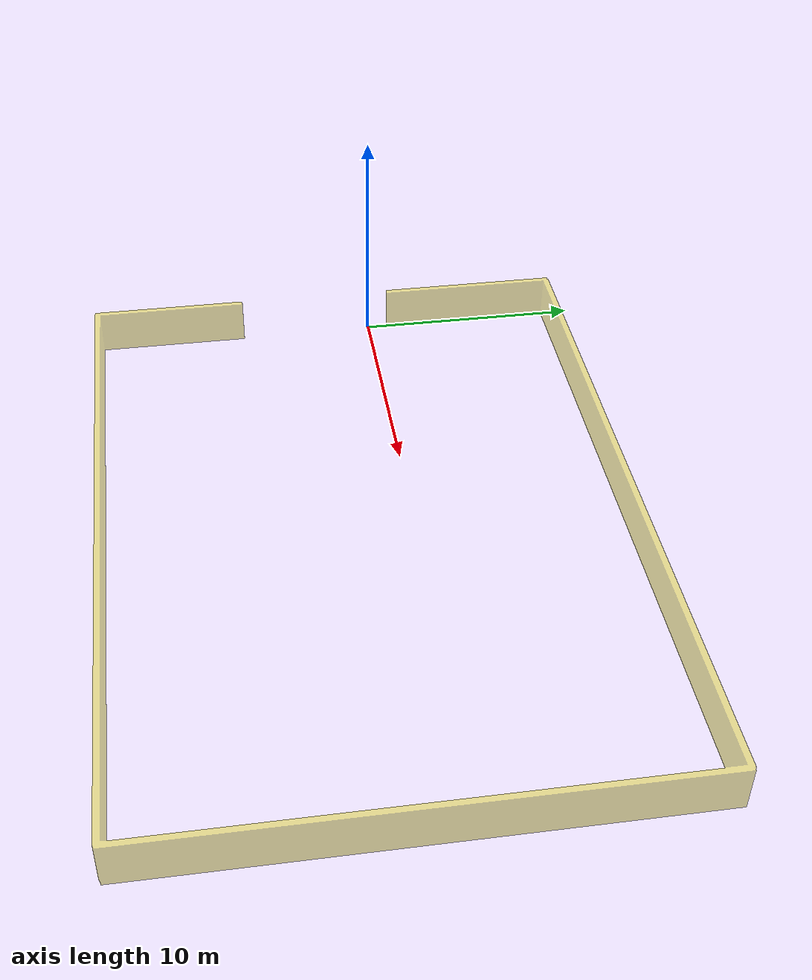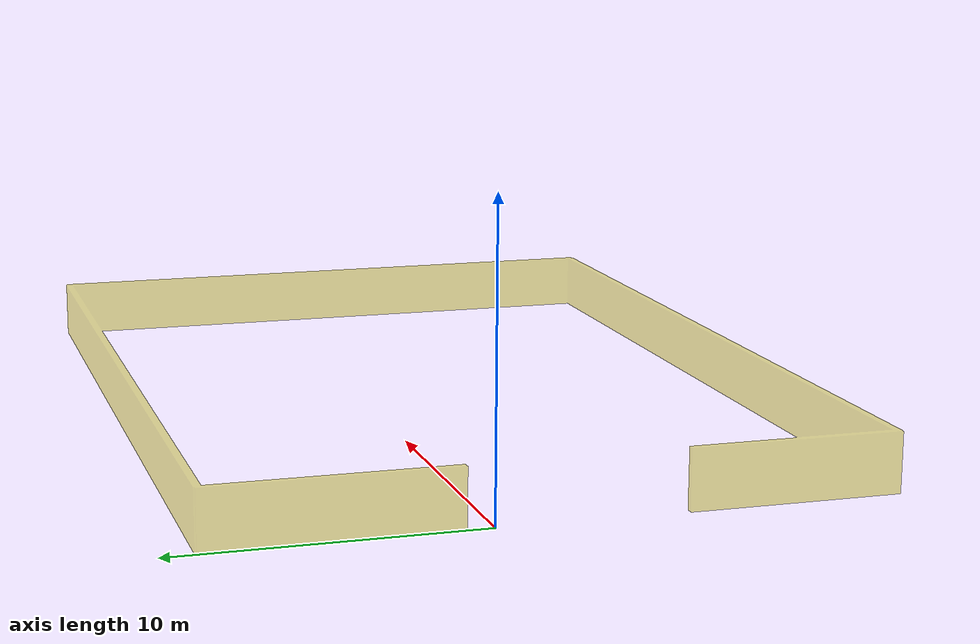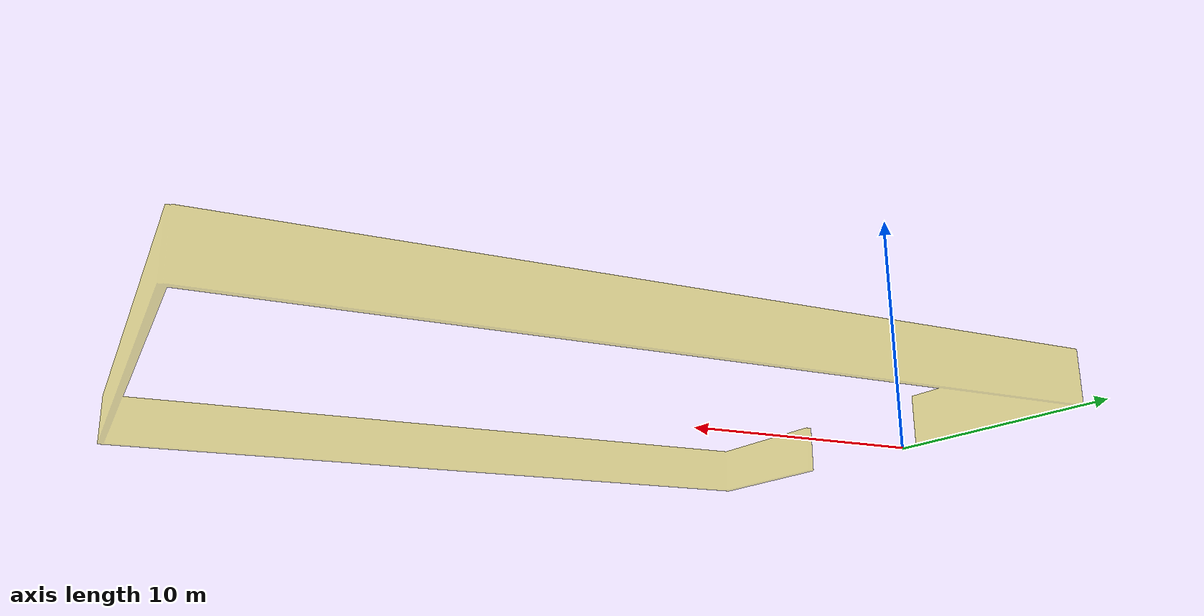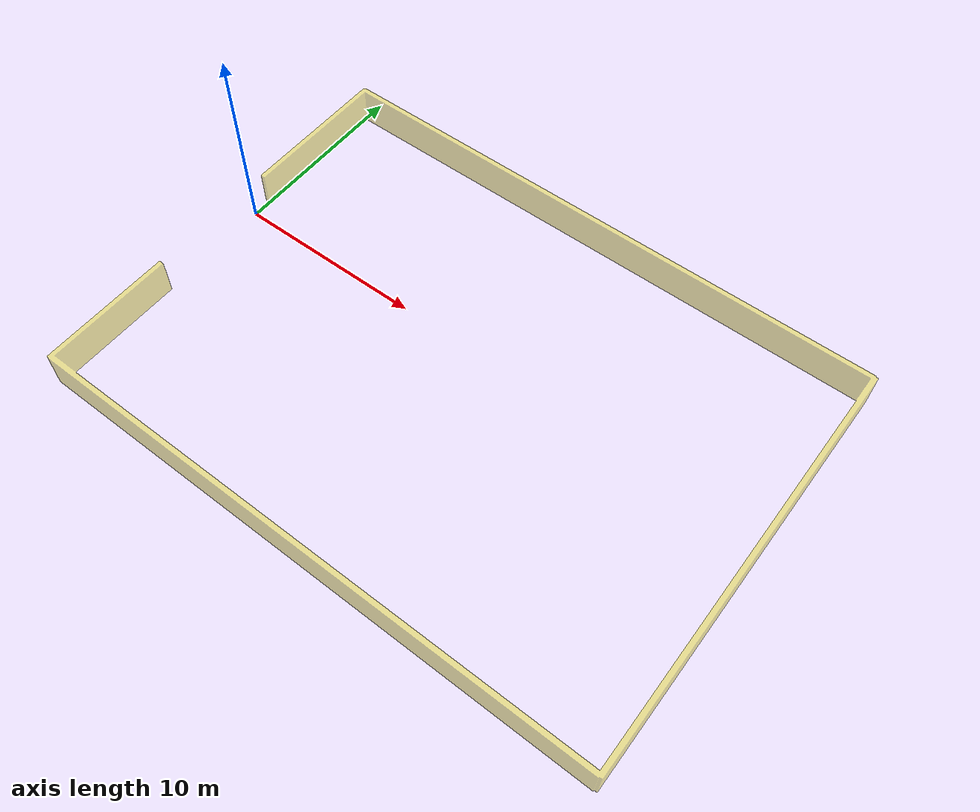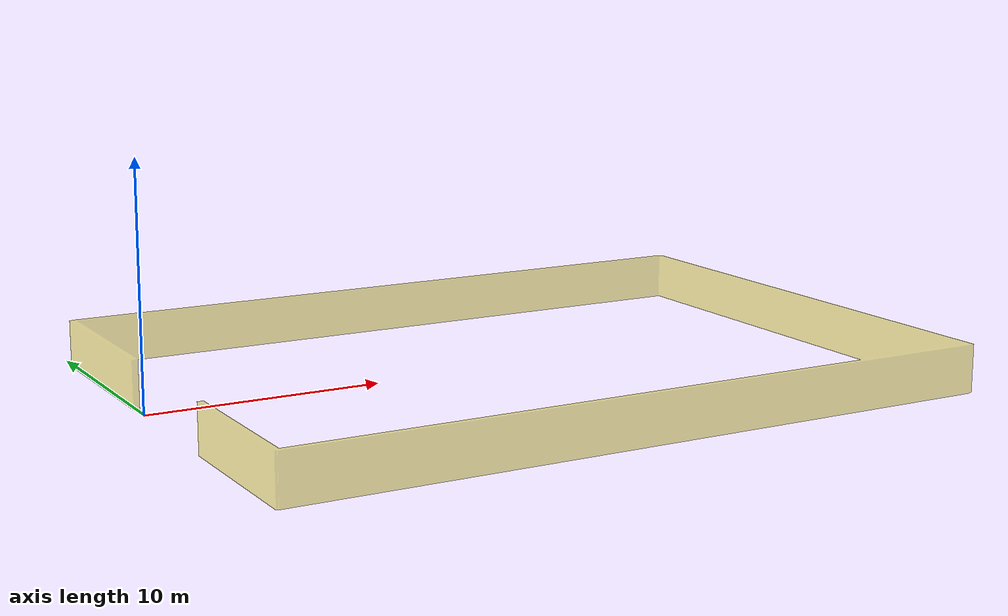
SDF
<?xml version="1.0" ?>
<sdf version="1.5">
  <model name="boundary">

    <pose>0 0 0  0 0 0</pose>

    <static>true</static>
    <link name="link">
      <inertial>
        <mass>54.4311</mass>
        <inertia>
          <ixx>1</ixx>
          <ixy>0</ixy>
          <ixz>0</ixz>
          <iyy>1</iyy>
          <iyz>0</iyz>
          <izz>1</izz>
        </inertia>
      </inertial>

      <collision name="collision">
	    <pose>0 0 0  0 0 0</pose>
        <geometry>
          <mesh>
            <uri>model://boundary/meshes/wall.stl</uri>
          </mesh>
        </geometry>
      </collision>

      <visual name="visual">
        <geometry>
          <mesh>
            <uri>model://boundary/meshes/wall.stl</uri>
          </mesh>
        </geometry>
        <material>
           <script>
  <name>Gazebo/YellowTransparent</name>
  </script>
        </material>
      </visual>
    </link>
  </model>
</sdf>
